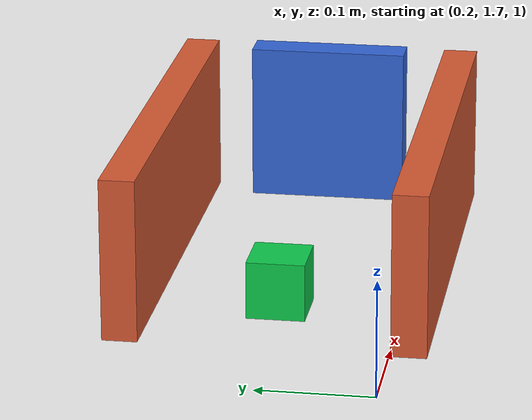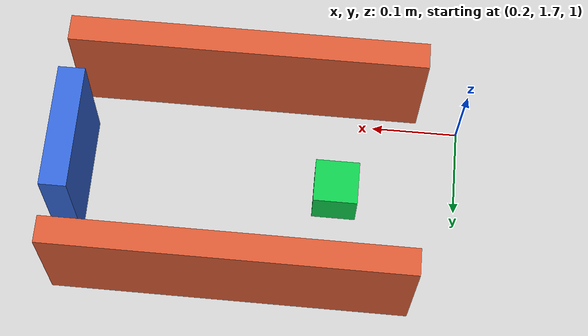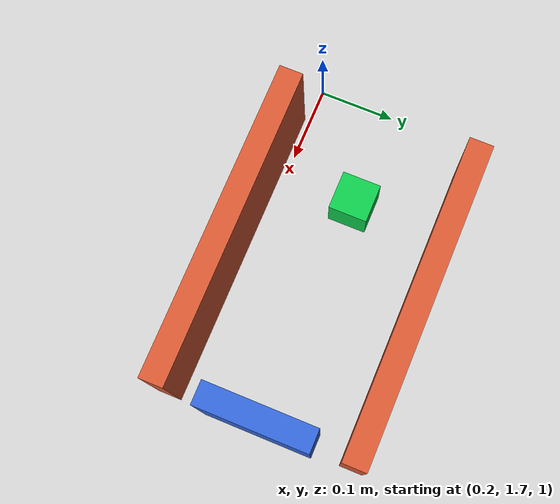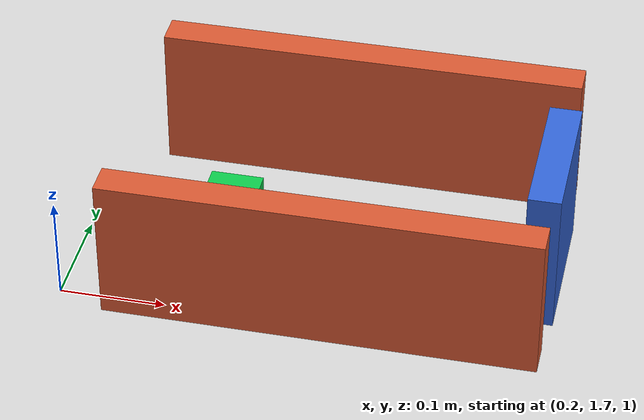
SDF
<sdf version="1.9">
 <world name="restricted_corridor_env">
  <physics name="1ms" type="ignored">
   <max_step_size>0.001</max_step_size>
   <real_time_factor>1.0</real_time_factor>
   <real_time_update_rate>1000</real_time_update_rate>
  </physics>
  <plugin name="gz::sim::systems::Physics" filename="gz-sim-physics-system"/>
  <plugin name="gz::sim::systems::UserCommands" filename="gz-sim-user-commands-system"/>
  <plugin name="gz::sim::systems::Sensors" filename="gz-sim-sensors-system">
   <render_engine>ogre2</render_engine>
  </plugin>
  <plugin name="gz::sim::systems::SceneBroadcaster" filename="gz-sim-scene-broadcaster-system"/>
  <scene>
   <ambient>0.45 0.45 0.45 1</ambient>
   <background>0.70 0.72 0.74 1</background>
   <shadows>true</shadows>
  </scene>
  <gravity>0 0 -9.8</gravity>
  <include><uri>model://ground_plane</uri></include>
  <include><uri>model://sun</uri></include>
  <model name="corridor_wall_left">
   <static>true</static>
   <pose>0.45 1.68 1.085 0 0 0</pose>
   <link name="link">
    <collision name="collision"><geometry><box><size>0.40 0.03 0.14</size></box></geometry></collision>
    <visual name="visual">
     <geometry><box><size>0.40 0.03 0.14</size></box></geometry>
     <material><ambient>0.85 0.35 0.20 1</ambient><diffuse>0.85 0.35 0.20 1</diffuse></material>
    </visual>
   </link>
  </model>
  <model name="corridor_wall_right">
   <static>true</static>
   <pose>0.45 1.92 1.085 0 0 0</pose>
   <link name="link">
    <collision name="collision"><geometry><box><size>0.40 0.03 0.14</size></box></geometry></collision>
    <visual name="visual">
     <geometry><box><size>0.40 0.03 0.14</size></box></geometry>
     <material><ambient>0.85 0.35 0.20 1</ambient><diffuse>0.85 0.35 0.20 1</diffuse></material>
    </visual>
   </link>
  </model>
  <model name="corridor_end_cap">
   <static>true</static>
   <pose>0.64 1.80 1.085 0 0 0</pose>
   <link name="link">
    <collision name="collision"><geometry><box><size>0.03 0.14 0.14</size></box></geometry></collision>
    <visual name="visual">
     <geometry><box><size>0.03 0.14 0.14</size></box></geometry>
     <material><ambient>0.20 0.40 0.85 1</ambient><diffuse>0.20 0.40 0.85 1</diffuse></material>
    </visual>
   </link>
  </model>
  <model name="corridor_target_cube">
   <static>false</static>
   <pose>0.34 1.80 1.040 0 0 0</pose>
   <link name="link">
    <inertial>
     <mass>0.12</mass>
     <inertia>
      <ixx>0.00005</ixx>
      <ixy>0.0</ixy>
      <ixz>0.0</ixz>
      <iyy>0.00005</iyy>
      <iyz>0.0</iyz>
      <izz>0.00005</izz>
     </inertia>
    </inertial>
    <collision name="collision"><geometry><box><size>0.05 0.05 0.05</size></box></geometry></collision>
    <visual name="visual">
     <geometry><box><size>0.05 0.05 0.05</size></box></geometry>
     <material><ambient>0.05 0.80 0.30 1</ambient><diffuse>0.05 0.80 0.30 1</diffuse></material>
    </visual>
   </link>
  </model>
 </world>
</sdf>
